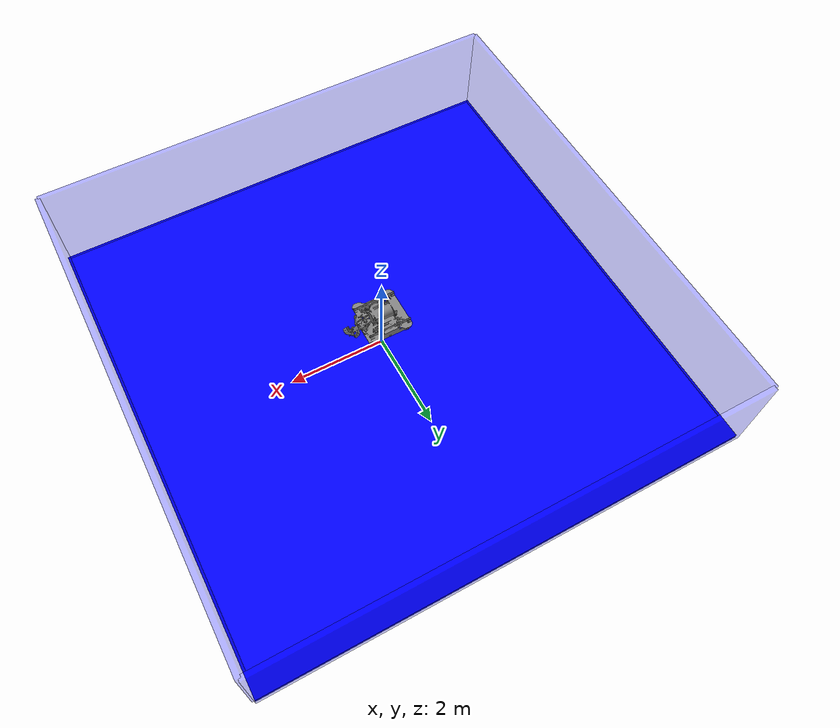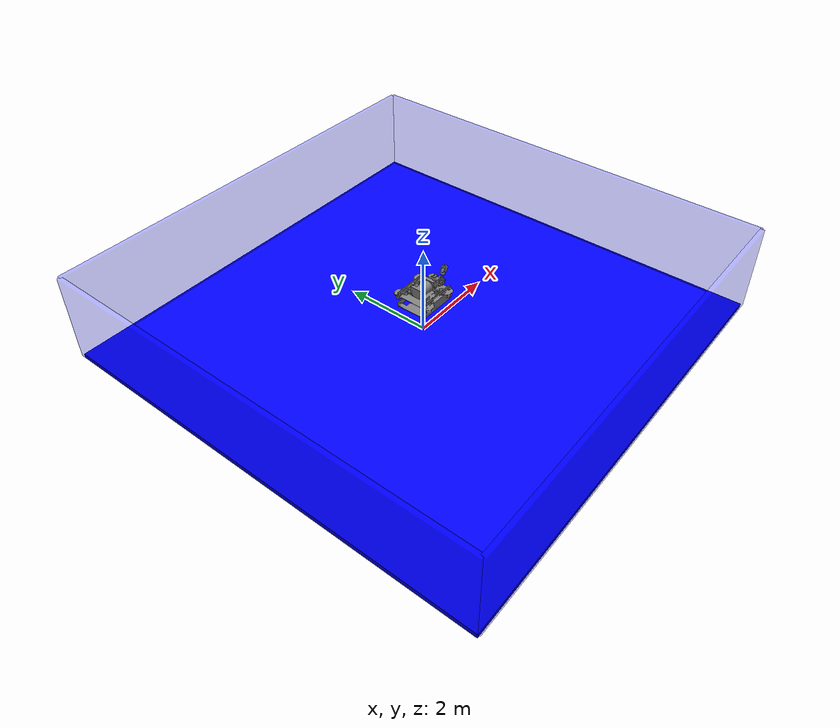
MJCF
<mujoco model="underwater_rov">

    <option density="1000" viscosity="0.001"/>

    <asset>
        <mesh name="rov_model" file="rov_model.stl" scale="0.0015 0.0015 0.0015"/>
    </asset>

    <worldbody>
        <!--Floor-->
        <geom type="box" size="5 5 0.05" pos="0 0 -0.05" rgba="0 0 1 1"/>
        <!--L/R Wall-->
        <geom type="box" size="5 0.05 1" pos="0 -5 1" rgba="0 0 1 0.3"/>
        <geom type="box" size="5 0.05 1" pos="0 5 1" rgba="0 0 1 0.3"/>
        <!--Front/Back Wall-->
        <geom type="box" size="0.05 5 1" pos="5 0 1" rgba="0 0 1 0.3"/>
        <geom type="box" size="0.05 5 1" pos="-5 0 1" rgba="0 0 1 0.3"/>
        <!--ROV-->
        <body name="rov_and_collision_box">
            <!--ROV weighs roughly 18 kg intertia set to 1 since not rotating-->
            <inertial mass="18" pos="0 0 0" diaginertia="1 1 1"/>
            <!--Move on X and Y axis-->
            <joint name="slide_x" type="slide" axis="1 0 0"/>
            <joint name="slide_y" type="slide" axis="0 1 0"/>
            <!--ROV and Collision Box-->
            <geom name="rov" type="mesh" mesh="rov_model" pos="0 0 1" euler="90 90 0"/>
            <geom name="collision" type="box" size="0.49 0.67 0.3" pos="0.2 0 1" rgba="1 0 0 0.0" euler="0 0 90"  fluidcoef="1.5 0.25 1.5 0 0" fluidshape="ellipsoid"/>
            <!--FrontLeft-->
            <site name="front_left" pos="0.33 0.4 0.92" euler="-90 45 0" size="0.05 0.05 0.05" rgba="1 0 0 1"/>
            <!--FrontRight-->
            <site name="front_right" pos="0.33 -0.4 0.92" euler="90 45 0" size="0.05 0.05 0.05" rgba="1 0 0 1"/>
            <!--BackLeft-->
            <site name="back_left" pos="-0.33 0.4 0.92" euler="90 45 0" size="0.05 0.05 0.05" rgba="1 0 0 1"/>
            <!--BackRight-->
            <site name="back_right" pos="-0.33 -0.4 0.92" euler="-90 45 0" size="0.05 0.05 0.05" rgba="1 0 0 1"/>
        </body>
    </worldbody>

    <actuator>
        <!--Blue Robotics T200 thrusters have max forward thrust of 3.71 and 2.92 converted to N-->
        <motor name="thruster1" site="front_left" gear="36.40" forcerange="-28.65 36.40" ctrlrange="-1 1"/>
        <motor name="thruster2" site="front_right" gear="36.40" forcerange="-28.65 36.40" ctrlrange="-1 1"/>
        <motor name="thruster3" site="back_left" gear="36.40" forcerange="-28.65 36.40" ctrlrange="-1 1"/>
        <motor name="thruster4" site="back_right" gear="36.40" forcerange="-28.65 36.40" ctrlrange="-1 1"/>
    </actuator>
</mujoco>
